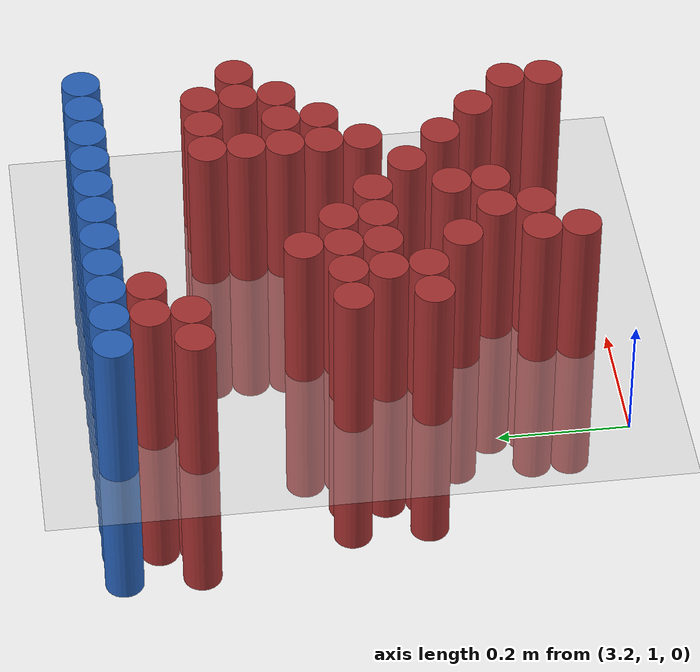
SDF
<sdf version="1.6">
 <world name="default">
  <model name="ground_plane">
   <static>1</static>
   <link name="link">
    <collision name="collision">
     <geometry><plane><normal>0 0 1</normal><size>100 100</size></plane></geometry>
     <surface><friction><ode><mu>100</mu><mu2>50</mu2></ode></friction></surface>
    </collision>
    <visual name="visual">
     <cast_shadows>0</cast_shadows>
     <geometry><plane><normal>0 0 1</normal><size>100 100</size></plane></geometry>
     <material>
      <script><uri>file://media/materials/scripts/gazebo.material</uri><name>Gazebo/Grey</name></script>
     </material>
    </visual>
   </link>
  </model>
  <model name="unit_cylinder_114">
   <static>1</static>
   <pose>3.210000 1.770000 0.000000 0.000000 0.000000 0.000000</pose>
   <link name="link">
    <inertial>
     <mass>1</mass>
     <inertia><ixx>0.145833</ixx><ixy>0</ixy><ixz>0</ixz><iyy>0.145833</iyy><iyz>0</iyz><izz>0.125</izz></inertia>
    </inertial>
    <collision name="collision">
     <geometry><cylinder><radius>0.030000</radius><length>0.5</length></cylinder></geometry>
    </collision>
    <visual name="visual">
     <geometry><cylinder><radius>0.030000</radius><length>0.5</length></cylinder></geometry>
     <material>
      <ambient>0.152000 0.379000 0.720000 1</ambient>
      <diffuse>0.152000 0.379000 0.720000 1</diffuse>
     </material>
     <material>
      <script><name>Gazebo/Grey</name><uri>file://media/materials/scripts/gazebo.material</uri></script>
     </material>
    </visual>
   </link>
  </model>
  <model name="unit_cylinder_115">
   <static>1</static>
   <pose>3.270000 1.770000 0.000000 0.000000 0.000000 0.000000</pose>
   <link name="link">
    <inertial>
     <mass>1</mass>
     <inertia><ixx>0.145833</ixx><ixy>0</ixy><ixz>0</ixz><iyy>0.145833</iyy><iyz>0</iyz><izz>0.125</izz></inertia>
    </inertial>
    <collision name="collision">
     <geometry><cylinder><radius>0.030000</radius><length>0.5</length></cylinder></geometry>
    </collision>
    <visual name="visual">
     <geometry><cylinder><radius>0.030000</radius><length>0.5</length></cylinder></geometry>
     <material>
      <ambient>0.152000 0.379000 0.720000 1</ambient>
      <diffuse>0.152000 0.379000 0.720000 1</diffuse>
     </material>
     <material>
      <script><name>Gazebo/Grey</name><uri>file://media/materials/scripts/gazebo.material</uri></script>
     </material>
    </visual>
   </link>
  </model>
  <model name="unit_cylinder_116">
   <static>1</static>
   <pose>3.330000 1.770000 0.000000 0.000000 0.000000 0.000000</pose>
   <link name="link">
    <inertial>
     <mass>1</mass>
     <inertia><ixx>0.145833</ixx><ixy>0</ixy><ixz>0</ixz><iyy>0.145833</iyy><iyz>0</iyz><izz>0.125</izz></inertia>
    </inertial>
    <collision name="collision">
     <geometry><cylinder><radius>0.030000</radius><length>0.5</length></cylinder></geometry>
    </collision>
    <visual name="visual">
     <geometry><cylinder><radius>0.030000</radius><length>0.5</length></cylinder></geometry>
     <material>
      <ambient>0.152000 0.379000 0.720000 1</ambient>
      <diffuse>0.152000 0.379000 0.720000 1</diffuse>
     </material>
     <material>
      <script><name>Gazebo/Grey</name><uri>file://media/materials/scripts/gazebo.material</uri></script>
     </material>
    </visual>
   </link>
  </model>
  <model name="unit_cylinder_117">
   <static>1</static>
   <pose>3.390000 1.770000 0.000000 0.000000 0.000000 0.000000</pose>
   <link name="link">
    <inertial>
     <mass>1</mass>
     <inertia><ixx>0.145833</ixx><ixy>0</ixy><ixz>0</ixz><iyy>0.145833</iyy><iyz>0</iyz><izz>0.125</izz></inertia>
    </inertial>
    <collision name="collision">
     <geometry><cylinder><radius>0.030000</radius><length>0.5</length></cylinder></geometry>
    </collision>
    <visual name="visual">
     <geometry><cylinder><radius>0.030000</radius><length>0.5</length></cylinder></geometry>
     <material>
      <ambient>0.152000 0.379000 0.720000 1</ambient>
      <diffuse>0.152000 0.379000 0.720000 1</diffuse>
     </material>
     <material>
      <script><name>Gazebo/Grey</name><uri>file://media/materials/scripts/gazebo.material</uri></script>
     </material>
    </visual>
   </link>
  </model>
  <model name="unit_cylinder_118">
   <static>1</static>
   <pose>3.450000 1.770000 0.000000 0.000000 0.000000 0.000000</pose>
   <link name="link">
    <inertial>
     <mass>1</mass>
     <inertia><ixx>0.145833</ixx><ixy>0</ixy><ixz>0</ixz><iyy>0.145833</iyy><iyz>0</iyz><izz>0.125</izz></inertia>
    </inertial>
    <collision name="collision">
     <geometry><cylinder><radius>0.030000</radius><length>0.5</length></cylinder></geometry>
    </collision>
    <visual name="visual">
     <geometry><cylinder><radius>0.030000</radius><length>0.5</length></cylinder></geometry>
     <material>
      <ambient>0.152000 0.379000 0.720000 1</ambient>
      <diffuse>0.152000 0.379000 0.720000 1</diffuse>
     </material>
     <material>
      <script><name>Gazebo/Grey</name><uri>file://media/materials/scripts/gazebo.material</uri></script>
     </material>
    </visual>
   </link>
  </model>
  <model name="unit_cylinder_119">
   <static>1</static>
   <pose>3.510000 1.770000 0.000000 0.000000 0.000000 0.000000</pose>
   <link name="link">
    <inertial>
     <mass>1</mass>
     <inertia><ixx>0.145833</ixx><ixy>0</ixy><ixz>0</ixz><iyy>0.145833</iyy><iyz>0</iyz><izz>0.125</izz></inertia>
    </inertial>
    <collision name="collision">
     <geometry><cylinder><radius>0.030000</radius><length>0.5</length></cylinder></geometry>
    </collision>
    <visual name="visual">
     <geometry><cylinder><radius>0.030000</radius><length>0.5</length></cylinder></geometry>
     <material>
      <ambient>0.152000 0.379000 0.720000 1</ambient>
      <diffuse>0.152000 0.379000 0.720000 1</diffuse>
     </material>
     <material>
      <script><name>Gazebo/Grey</name><uri>file://media/materials/scripts/gazebo.material</uri></script>
     </material>
    </visual>
   </link>
  </model>
  <model name="unit_cylinder_120">
   <static>1</static>
   <pose>3.570000 1.770000 0.000000 0.000000 0.000000 0.000000</pose>
   <link name="link">
    <inertial>
     <mass>1</mass>
     <inertia><ixx>0.145833</ixx><ixy>0</ixy><ixz>0</ixz><iyy>0.145833</iyy><iyz>0</iyz><izz>0.125</izz></inertia>
    </inertial>
    <collision name="collision">
     <geometry><cylinder><radius>0.030000</radius><length>0.5</length></cylinder></geometry>
    </collision>
    <visual name="visual">
     <geometry><cylinder><radius>0.030000</radius><length>0.5</length></cylinder></geometry>
     <material>
      <ambient>0.152000 0.379000 0.720000 1</ambient>
      <diffuse>0.152000 0.379000 0.720000 1</diffuse>
     </material>
     <material>
      <script><name>Gazebo/Grey</name><uri>file://media/materials/scripts/gazebo.material</uri></script>
     </material>
    </visual>
   </link>
  </model>
  <model name="unit_cylinder_121">
   <static>1</static>
   <pose>3.630000 1.770000 0.000000 0.000000 0.000000 0.000000</pose>
   <link name="link">
    <inertial>
     <mass>1</mass>
     <inertia><ixx>0.145833</ixx><ixy>0</ixy><ixz>0</ixz><iyy>0.145833</iyy><iyz>0</iyz><izz>0.125</izz></inertia>
    </inertial>
    <collision name="collision">
     <geometry><cylinder><radius>0.030000</radius><length>0.5</length></cylinder></geometry>
    </collision>
    <visual name="visual">
     <geometry><cylinder><radius>0.030000</radius><length>0.5</length></cylinder></geometry>
     <material>
      <ambient>0.152000 0.379000 0.720000 1</ambient>
      <diffuse>0.152000 0.379000 0.720000 1</diffuse>
     </material>
     <material>
      <script><name>Gazebo/Grey</name><uri>file://media/materials/scripts/gazebo.material</uri></script>
     </material>
    </visual>
   </link>
  </model>
  <model name="unit_cylinder_122">
   <static>1</static>
   <pose>3.690000 1.770000 0.000000 0.000000 0.000000 0.000000</pose>
   <link name="link">
    <inertial>
     <mass>1</mass>
     <inertia><ixx>0.145833</ixx><ixy>0</ixy><ixz>0</ixz><iyy>0.145833</iyy><iyz>0</iyz><izz>0.125</izz></inertia>
    </inertial>
    <collision name="collision">
     <geometry><cylinder><radius>0.030000</radius><length>0.5</length></cylinder></geometry>
    </collision>
    <visual name="visual">
     <geometry><cylinder><radius>0.030000</radius><length>0.5</length></cylinder></geometry>
     <material>
      <ambient>0.152000 0.379000 0.720000 1</ambient>
      <diffuse>0.152000 0.379000 0.720000 1</diffuse>
     </material>
     <material>
      <script><name>Gazebo/Grey</name><uri>file://media/materials/scripts/gazebo.material</uri></script>
     </material>
    </visual>
   </link>
  </model>
  <model name="unit_cylinder_123">
   <static>1</static>
   <pose>3.750000 1.770000 0.000000 0.000000 0.000000 0.000000</pose>
   <link name="link">
    <inertial>
     <mass>1</mass>
     <inertia><ixx>0.145833</ixx><ixy>0</ixy><ixz>0</ixz><iyy>0.145833</iyy><iyz>0</iyz><izz>0.125</izz></inertia>
    </inertial>
    <collision name="collision">
     <geometry><cylinder><radius>0.030000</radius><length>0.5</length></cylinder></geometry>
    </collision>
    <visual name="visual">
     <geometry><cylinder><radius>0.030000</radius><length>0.5</length></cylinder></geometry>
     <material>
      <ambient>0.152000 0.379000 0.720000 1</ambient>
      <diffuse>0.152000 0.379000 0.720000 1</diffuse>
     </material>
     <material>
      <script><name>Gazebo/Grey</name><uri>file://media/materials/scripts/gazebo.material</uri></script>
     </material>
    </visual>
   </link>
  </model>
  <model name="unit_cylinder_124">
   <static>1</static>
   <pose>3.810000 1.770000 0.000000 0.000000 0.000000 0.000000</pose>
   <link name="link">
    <inertial>
     <mass>1</mass>
     <inertia><ixx>0.145833</ixx><ixy>0</ixy><ixz>0</ixz><iyy>0.145833</iyy><iyz>0</iyz><izz>0.125</izz></inertia>
    </inertial>
    <collision name="collision">
     <geometry><cylinder><radius>0.030000</radius><length>0.5</length></cylinder></geometry>
    </collision>
    <visual name="visual">
     <geometry><cylinder><radius>0.030000</radius><length>0.5</length></cylinder></geometry>
     <material>
      <ambient>0.152000 0.379000 0.720000 1</ambient>
      <diffuse>0.152000 0.379000 0.720000 1</diffuse>
     </material>
     <material>
      <script><name>Gazebo/Grey</name><uri>file://media/materials/scripts/gazebo.material</uri></script>
     </material>
    </visual>
   </link>
  </model>
  <model name="unit_cylinder_135">
   <static>1</static>
   <pose>3.270000 1.710000 0.000000 0.000000 0.000000 0.000000</pose>
   <link name="link">
    <inertial>
     <mass>1</mass>
     <inertia><ixx>0.145833</ixx><ixy>0</ixy><ixz>0</ixz><iyy>0.145833</iyy><iyz>0</iyz><izz>0.125</izz></inertia>
    </inertial>
    <collision name="collision">
     <geometry><cylinder><radius>0.030000</radius><length>0.5</length></cylinder></geometry>
    </collision>
    <visual name="visual">
     <geometry><cylinder><radius>0.030000</radius><length>0.5</length></cylinder></geometry>
     <material>
      <ambient>0.648000 0.192000 0.192000 1</ambient>
      <diffuse>0.648000 0.192000 0.192000 1</diffuse>
     </material>
     <material>
      <script><name>Gazebo/Grey</name><uri>file://media/materials/scripts/gazebo.material</uri></script>
     </material>
    </visual>
   </link>
  </model>
  <model name="unit_cylinder_136">
   <static>1</static>
   <pose>3.330000 1.710000 0.000000 0.000000 0.000000 0.000000</pose>
   <link name="link">
    <inertial>
     <mass>1</mass>
     <inertia><ixx>0.145833</ixx><ixy>0</ixy><ixz>0</ixz><iyy>0.145833</iyy><iyz>0</iyz><izz>0.125</izz></inertia>
    </inertial>
    <collision name="collision">
     <geometry><cylinder><radius>0.030000</radius><length>0.5</length></cylinder></geometry>
    </collision>
    <visual name="visual">
     <geometry><cylinder><radius>0.030000</radius><length>0.5</length></cylinder></geometry>
     <material>
      <ambient>0.648000 0.192000 0.192000 1</ambient>
      <diffuse>0.648000 0.192000 0.192000 1</diffuse>
     </material>
     <material>
      <script><name>Gazebo/Grey</name><uri>file://media/materials/scripts/gazebo.material</uri></script>
     </material>
    </visual>
   </link>
  </model>
  <model name="unit_cylinder_142">
   <static>1</static>
   <pose>3.210000 1.650000 0.000000 0.000000 0.000000 0.000000</pose>
   <link name="link">
    <inertial>
     <mass>1</mass>
     <inertia><ixx>0.145833</ixx><ixy>0</ixy><ixz>0</ixz><iyy>0.145833</iyy><iyz>0</iyz><izz>0.125</izz></inertia>
    </inertial>
    <collision name="collision">
     <geometry><cylinder><radius>0.030000</radius><length>0.5</length></cylinder></geometry>
    </collision>
    <visual name="visual">
     <geometry><cylinder><radius>0.030000</radius><length>0.5</length></cylinder></geometry>
     <material>
      <ambient>0.648000 0.192000 0.192000 1</ambient>
      <diffuse>0.648000 0.192000 0.192000 1</diffuse>
     </material>
     <material>
      <script><name>Gazebo/Grey</name><uri>file://media/materials/scripts/gazebo.material</uri></script>
     </material>
    </visual>
   </link>
  </model>
  <model name="unit_cylinder_143">
   <static>1</static>
   <pose>3.270000 1.650000 0.000000 0.000000 0.000000 0.000000</pose>
   <link name="link">
    <inertial>
     <mass>1</mass>
     <inertia><ixx>0.145833</ixx><ixy>0</ixy><ixz>0</ixz><iyy>0.145833</iyy><iyz>0</iyz><izz>0.125</izz></inertia>
    </inertial>
    <collision name="collision">
     <geometry><cylinder><radius>0.030000</radius><length>0.5</length></cylinder></geometry>
    </collision>
    <visual name="visual">
     <geometry><cylinder><radius>0.030000</radius><length>0.5</length></cylinder></geometry>
     <material>
      <ambient>0.648000 0.192000 0.192000 1</ambient>
      <diffuse>0.648000 0.192000 0.192000 1</diffuse>
     </material>
     <material>
      <script><name>Gazebo/Grey</name><uri>file://media/materials/scripts/gazebo.material</uri></script>
     </material>
    </visual>
   </link>
  </model>
  <model name="unit_cylinder_150">
   <static>1</static>
   <pose>3.630000 1.590000 0.000000 0.000000 0.000000 0.000000</pose>
   <link name="link">
    <inertial>
     <mass>1</mass>
     <inertia><ixx>0.145833</ixx><ixy>0</ixy><ixz>0</ixz><iyy>0.145833</iyy><iyz>0</iyz><izz>0.125</izz></inertia>
    </inertial>
    <collision name="collision">
     <geometry><cylinder><radius>0.030000</radius><length>0.5</length></cylinder></geometry>
    </collision>
    <visual name="visual">
     <geometry><cylinder><radius>0.030000</radius><length>0.5</length></cylinder></geometry>
     <material>
      <ambient>0.648000 0.192000 0.192000 1</ambient>
      <diffuse>0.648000 0.192000 0.192000 1</diffuse>
     </material>
     <material>
      <script><name>Gazebo/Grey</name><uri>file://media/materials/scripts/gazebo.material</uri></script>
     </material>
    </visual>
   </link>
  </model>
  <model name="unit_cylinder_151">
   <static>1</static>
   <pose>3.690000 1.590000 0.000000 0.000000 0.000000 0.000000</pose>
   <link name="link">
    <inertial>
     <mass>1</mass>
     <inertia><ixx>0.145833</ixx><ixy>0</ixy><ixz>0</ixz><iyy>0.145833</iyy><iyz>0</iyz><izz>0.125</izz></inertia>
    </inertial>
    <collision name="collision">
     <geometry><cylinder><radius>0.030000</radius><length>0.5</length></cylinder></geometry>
    </collision>
    <visual name="visual">
     <geometry><cylinder><radius>0.030000</radius><length>0.5</length></cylinder></geometry>
     <material>
      <ambient>0.648000 0.192000 0.192000 1</ambient>
      <diffuse>0.648000 0.192000 0.192000 1</diffuse>
     </material>
     <material>
      <script><name>Gazebo/Grey</name><uri>file://media/materials/scripts/gazebo.material</uri></script>
     </material>
    </visual>
   </link>
  </model>
  <model name="unit_cylinder_152">
   <static>1</static>
   <pose>3.750000 1.590000 0.000000 0.000000 0.000000 0.000000</pose>
   <link name="link">
    <inertial>
     <mass>1</mass>
     <inertia><ixx>0.145833</ixx><ixy>0</ixy><ixz>0</ixz><iyy>0.145833</iyy><iyz>0</iyz><izz>0.125</izz></inertia>
    </inertial>
    <collision name="collision">
     <geometry><cylinder><radius>0.030000</radius><length>0.5</length></cylinder></geometry>
    </collision>
    <visual name="visual">
     <geometry><cylinder><radius>0.030000</radius><length>0.5</length></cylinder></geometry>
     <material>
      <ambient>0.648000 0.192000 0.192000 1</ambient>
      <diffuse>0.648000 0.192000 0.192000 1</diffuse>
     </material>
     <material>
      <script><name>Gazebo/Grey</name><uri>file://media/materials/scripts/gazebo.material</uri></script>
     </material>
    </visual>
   </link>
  </model>
  <model name="unit_cylinder_157">
   <static>1</static>
   <pose>3.630000 1.530000 0.000000 0.000000 0.000000 0.000000</pose>
   <link name="link">
    <inertial>
     <mass>1</mass>
     <inertia><ixx>0.145833</ixx><ixy>0</ixy><ixz>0</ixz><iyy>0.145833</iyy><iyz>0</iyz><izz>0.125</izz></inertia>
    </inertial>
    <collision name="collision">
     <geometry><cylinder><radius>0.030000</radius><length>0.5</length></cylinder></geometry>
    </collision>
    <visual name="visual">
     <geometry><cylinder><radius>0.030000</radius><length>0.5</length></cylinder></geometry>
     <material>
      <ambient>0.648000 0.192000 0.192000 1</ambient>
      <diffuse>0.648000 0.192000 0.192000 1</diffuse>
     </material>
     <material>
      <script><name>Gazebo/Grey</name><uri>file://media/materials/scripts/gazebo.material</uri></script>
     </material>
    </visual>
   </link>
  </model>
  <model name="unit_cylinder_158">
   <static>1</static>
   <pose>3.750000 1.530000 0.000000 0.000000 0.000000 0.000000</pose>
   <link name="link">
    <inertial>
     <mass>1</mass>
     <inertia><ixx>0.145833</ixx><ixy>0</ixy><ixz>0</ixz><iyy>0.145833</iyy><iyz>0</iyz><izz>0.125</izz></inertia>
    </inertial>
    <collision name="collision">
     <geometry><cylinder><radius>0.030000</radius><length>0.5</length></cylinder></geometry>
    </collision>
    <visual name="visual">
     <geometry><cylinder><radius>0.030000</radius><length>0.5</length></cylinder></geometry>
     <material>
      <ambient>0.648000 0.192000 0.192000 1</ambient>
      <diffuse>0.648000 0.192000 0.192000 1</diffuse>
     </material>
     <material>
      <script><name>Gazebo/Grey</name><uri>file://media/materials/scripts/gazebo.material</uri></script>
     </material>
    </visual>
   </link>
  </model>
  <model name="unit_cylinder_159">
   <static>1</static>
   <pose>3.810000 1.530000 0.000000 0.000000 0.000000 0.000000</pose>
   <link name="link">
    <inertial>
     <mass>1</mass>
     <inertia><ixx>0.145833</ixx><ixy>0</ixy><ixz>0</ixz><iyy>0.145833</iyy><iyz>0</iyz><izz>0.125</izz></inertia>
    </inertial>
    <collision name="collision">
     <geometry><cylinder><radius>0.030000</radius><length>0.5</length></cylinder></geometry>
    </collision>
    <visual name="visual">
     <geometry><cylinder><radius>0.030000</radius><length>0.5</length></cylinder></geometry>
     <material>
      <ambient>0.648000 0.192000 0.192000 1</ambient>
      <diffuse>0.648000 0.192000 0.192000 1</diffuse>
     </material>
     <material>
      <script><name>Gazebo/Grey</name><uri>file://media/materials/scripts/gazebo.material</uri></script>
     </material>
    </visual>
   </link>
  </model>
  <model name="unit_cylinder_165">
   <static>1</static>
   <pose>3.390000 1.470000 0.000000 0.000000 0.000000 0.000000</pose>
   <link name="link">
    <inertial>
     <mass>1</mass>
     <inertia><ixx>0.145833</ixx><ixy>0</ixy><ixz>0</ixz><iyy>0.145833</iyy><iyz>0</iyz><izz>0.125</izz></inertia>
    </inertial>
    <collision name="collision">
     <geometry><cylinder><radius>0.030000</radius><length>0.5</length></cylinder></geometry>
    </collision>
    <visual name="visual">
     <geometry><cylinder><radius>0.030000</radius><length>0.5</length></cylinder></geometry>
     <material>
      <ambient>0.648000 0.192000 0.192000 1</ambient>
      <diffuse>0.648000 0.192000 0.192000 1</diffuse>
     </material>
     <material>
      <script><name>Gazebo/Grey</name><uri>file://media/materials/scripts/gazebo.material</uri></script>
     </material>
    </visual>
   </link>
  </model>
  <model name="unit_cylinder_166">
   <static>1</static>
   <pose>3.630000 1.470000 0.000000 0.000000 0.000000 0.000000</pose>
   <link name="link">
    <inertial>
     <mass>1</mass>
     <inertia><ixx>0.145833</ixx><ixy>0</ixy><ixz>0</ixz><iyy>0.145833</iyy><iyz>0</iyz><izz>0.125</izz></inertia>
    </inertial>
    <collision name="collision">
     <geometry><cylinder><radius>0.030000</radius><length>0.5</length></cylinder></geometry>
    </collision>
    <visual name="visual">
     <geometry><cylinder><radius>0.030000</radius><length>0.5</length></cylinder></geometry>
     <material>
      <ambient>0.648000 0.192000 0.192000 1</ambient>
      <diffuse>0.648000 0.192000 0.192000 1</diffuse>
     </material>
     <material>
      <script><name>Gazebo/Grey</name><uri>file://media/materials/scripts/gazebo.material</uri></script>
     </material>
    </visual>
   </link>
  </model>
  <model name="unit_cylinder_167">
   <static>1</static>
   <pose>3.690000 1.470000 0.000000 0.000000 0.000000 0.000000</pose>
   <link name="link">
    <inertial>
     <mass>1</mass>
     <inertia><ixx>0.145833</ixx><ixy>0</ixy><ixz>0</ixz><iyy>0.145833</iyy><iyz>0</iyz><izz>0.125</izz></inertia>
    </inertial>
    <collision name="collision">
     <geometry><cylinder><radius>0.030000</radius><length>0.5</length></cylinder></geometry>
    </collision>
    <visual name="visual">
     <geometry><cylinder><radius>0.030000</radius><length>0.5</length></cylinder></geometry>
     <material>
      <ambient>0.648000 0.192000 0.192000 1</ambient>
      <diffuse>0.648000 0.192000 0.192000 1</diffuse>
     </material>
     <material>
      <script><name>Gazebo/Grey</name><uri>file://media/materials/scripts/gazebo.material</uri></script>
     </material>
    </visual>
   </link>
  </model>
  <model name="unit_cylinder_168">
   <static>1</static>
   <pose>3.750000 1.470000 0.000000 0.000000 0.000000 0.000000</pose>
   <link name="link">
    <inertial>
     <mass>1</mass>
     <inertia><ixx>0.145833</ixx><ixy>0</ixy><ixz>0</ixz><iyy>0.145833</iyy><iyz>0</iyz><izz>0.125</izz></inertia>
    </inertial>
    <collision name="collision">
     <geometry><cylinder><radius>0.030000</radius><length>0.5</length></cylinder></geometry>
    </collision>
    <visual name="visual">
     <geometry><cylinder><radius>0.030000</radius><length>0.5</length></cylinder></geometry>
     <material>
      <ambient>0.648000 0.192000 0.192000 1</ambient>
      <diffuse>0.648000 0.192000 0.192000 1</diffuse>
     </material>
     <material>
      <script><name>Gazebo/Grey</name><uri>file://media/materials/scripts/gazebo.material</uri></script>
     </material>
    </visual>
   </link>
  </model>
  <model name="unit_cylinder_177">
   <static>1</static>
   <pose>3.270000 1.410000 0.000000 0.000000 0.000000 0.000000</pose>
   <link name="link">
    <inertial>
     <mass>1</mass>
     <inertia><ixx>0.145833</ixx><ixy>0</ixy><ixz>0</ixz><iyy>0.145833</iyy><iyz>0</iyz><izz>0.125</izz></inertia>
    </inertial>
    <collision name="collision">
     <geometry><cylinder><radius>0.030000</radius><length>0.5</length></cylinder></geometry>
    </collision>
    <visual name="visual">
     <geometry><cylinder><radius>0.030000</radius><length>0.5</length></cylinder></geometry>
     <material>
      <ambient>0.648000 0.192000 0.192000 1</ambient>
      <diffuse>0.648000 0.192000 0.192000 1</diffuse>
     </material>
     <material>
      <script><name>Gazebo/Grey</name><uri>file://media/materials/scripts/gazebo.material</uri></script>
     </material>
    </visual>
   </link>
  </model>
  <model name="unit_cylinder_178">
   <static>1</static>
   <pose>3.330000 1.410000 0.000000 0.000000 0.000000 0.000000</pose>
   <link name="link">
    <inertial>
     <mass>1</mass>
     <inertia><ixx>0.145833</ixx><ixy>0</ixy><ixz>0</ixz><iyy>0.145833</iyy><iyz>0</iyz><izz>0.125</izz></inertia>
    </inertial>
    <collision name="collision">
     <geometry><cylinder><radius>0.030000</radius><length>0.5</length></cylinder></geometry>
    </collision>
    <visual name="visual">
     <geometry><cylinder><radius>0.030000</radius><length>0.5</length></cylinder></geometry>
     <material>
      <ambient>0.648000 0.192000 0.192000 1</ambient>
      <diffuse>0.648000 0.192000 0.192000 1</diffuse>
     </material>
     <material>
      <script><name>Gazebo/Grey</name><uri>file://media/materials/scripts/gazebo.material</uri></script>
     </material>
    </visual>
   </link>
  </model>
  <model name="unit_cylinder_179">
   <static>1</static>
   <pose>3.390000 1.410000 0.000000 0.000000 0.000000 0.000000</pose>
   <link name="link">
    <inertial>
     <mass>1</mass>
     <inertia><ixx>0.145833</ixx><ixy>0</ixy><ixz>0</ixz><iyy>0.145833</iyy><iyz>0</iyz><izz>0.125</izz></inertia>
    </inertial>
    <collision name="collision">
     <geometry><cylinder><radius>0.030000</radius><length>0.5</length></cylinder></geometry>
    </collision>
    <visual name="visual">
     <geometry><cylinder><radius>0.030000</radius><length>0.5</length></cylinder></geometry>
     <material>
      <ambient>0.648000 0.192000 0.192000 1</ambient>
      <diffuse>0.648000 0.192000 0.192000 1</diffuse>
     </material>
     <material>
      <script><name>Gazebo/Grey</name><uri>file://media/materials/scripts/gazebo.material</uri></script>
     </material>
    </visual>
   </link>
  </model>
  <model name="unit_cylinder_180">
   <static>1</static>
   <pose>3.450000 1.410000 0.000000 0.000000 0.000000 0.000000</pose>
   <link name="link">
    <inertial>
     <mass>1</mass>
     <inertia><ixx>0.145833</ixx><ixy>0</ixy><ixz>0</ixz><iyy>0.145833</iyy><iyz>0</iyz><izz>0.125</izz></inertia>
    </inertial>
    <collision name="collision">
     <geometry><cylinder><radius>0.030000</radius><length>0.5</length></cylinder></geometry>
    </collision>
    <visual name="visual">
     <geometry><cylinder><radius>0.030000</radius><length>0.5</length></cylinder></geometry>
     <material>
      <ambient>0.648000 0.192000 0.192000 1</ambient>
      <diffuse>0.648000 0.192000 0.192000 1</diffuse>
     </material>
     <material>
      <script><name>Gazebo/Grey</name><uri>file://media/materials/scripts/gazebo.material</uri></script>
     </material>
    </visual>
   </link>
  </model>
  <model name="unit_cylinder_181">
   <static>1</static>
   <pose>3.630000 1.410000 0.000000 0.000000 0.000000 0.000000</pose>
   <link name="link">
    <inertial>
     <mass>1</mass>
     <inertia><ixx>0.145833</ixx><ixy>0</ixy><ixz>0</ixz><iyy>0.145833</iyy><iyz>0</iyz><izz>0.125</izz></inertia>
    </inertial>
    <collision name="collision">
     <geometry><cylinder><radius>0.030000</radius><length>0.5</length></cylinder></geometry>
    </collision>
    <visual name="visual">
     <geometry><cylinder><radius>0.030000</radius><length>0.5</length></cylinder></geometry>
     <material>
      <ambient>0.648000 0.192000 0.192000 1</ambient>
      <diffuse>0.648000 0.192000 0.192000 1</diffuse>
     </material>
     <material>
      <script><name>Gazebo/Grey</name><uri>file://media/materials/scripts/gazebo.material</uri></script>
     </material>
    </visual>
   </link>
  </model>
  <model name="unit_cylinder_182">
   <static>1</static>
   <pose>3.690000 1.410000 0.000000 0.000000 0.000000 0.000000</pose>
   <link name="link">
    <inertial>
     <mass>1</mass>
     <inertia><ixx>0.145833</ixx><ixy>0</ixy><ixz>0</ixz><iyy>0.145833</iyy><iyz>0</iyz><izz>0.125</izz></inertia>
    </inertial>
    <collision name="collision">
     <geometry><cylinder><radius>0.030000</radius><length>0.5</length></cylinder></geometry>
    </collision>
    <visual name="visual">
     <geometry><cylinder><radius>0.030000</radius><length>0.5</length></cylinder></geometry>
     <material>
      <ambient>0.648000 0.192000 0.192000 1</ambient>
      <diffuse>0.648000 0.192000 0.192000 1</diffuse>
     </material>
     <material>
      <script><name>Gazebo/Grey</name><uri>file://media/materials/scripts/gazebo.material</uri></script>
     </material>
    </visual>
   </link>
  </model>
  <model name="unit_cylinder_188">
   <static>1</static>
   <pose>3.330000 1.350000 0.000000 0.000000 0.000000 0.000000</pose>
   <link name="link">
    <inertial>
     <mass>1</mass>
     <inertia><ixx>0.145833</ixx><ixy>0</ixy><ixz>0</ixz><iyy>0.145833</iyy><iyz>0</iyz><izz>0.125</izz></inertia>
    </inertial>
    <collision name="collision">
     <geometry><cylinder><radius>0.030000</radius><length>0.5</length></cylinder></geometry>
    </collision>
    <visual name="visual">
     <geometry><cylinder><radius>0.030000</radius><length>0.5</length></cylinder></geometry>
     <material>
      <ambient>0.648000 0.192000 0.192000 1</ambient>
      <diffuse>0.648000 0.192000 0.192000 1</diffuse>
     </material>
     <material>
      <script><name>Gazebo/Grey</name><uri>file://media/materials/scripts/gazebo.material</uri></script>
     </material>
    </visual>
   </link>
  </model>
  <model name="unit_cylinder_189">
   <static>1</static>
   <pose>3.390000 1.350000 0.000000 0.000000 0.000000 0.000000</pose>
   <link name="link">
    <inertial>
     <mass>1</mass>
     <inertia><ixx>0.145833</ixx><ixy>0</ixy><ixz>0</ixz><iyy>0.145833</iyy><iyz>0</iyz><izz>0.125</izz></inertia>
    </inertial>
    <collision name="collision">
     <geometry><cylinder><radius>0.030000</radius><length>0.5</length></cylinder></geometry>
    </collision>
    <visual name="visual">
     <geometry><cylinder><radius>0.030000</radius><length>0.5</length></cylinder></geometry>
     <material>
      <ambient>0.648000 0.192000 0.192000 1</ambient>
      <diffuse>0.648000 0.192000 0.192000 1</diffuse>
     </material>
     <material>
      <script><name>Gazebo/Grey</name><uri>file://media/materials/scripts/gazebo.material</uri></script>
     </material>
    </visual>
   </link>
  </model>
  <model name="unit_cylinder_190">
   <static>1</static>
   <pose>3.450000 1.350000 0.000000 0.000000 0.000000 0.000000</pose>
   <link name="link">
    <inertial>
     <mass>1</mass>
     <inertia><ixx>0.145833</ixx><ixy>0</ixy><ixz>0</ixz><iyy>0.145833</iyy><iyz>0</iyz><izz>0.125</izz></inertia>
    </inertial>
    <collision name="collision">
     <geometry><cylinder><radius>0.030000</radius><length>0.5</length></cylinder></geometry>
    </collision>
    <visual name="visual">
     <geometry><cylinder><radius>0.030000</radius><length>0.5</length></cylinder></geometry>
     <material>
      <ambient>0.648000 0.192000 0.192000 1</ambient>
      <diffuse>0.648000 0.192000 0.192000 1</diffuse>
     </material>
     <material>
      <script><name>Gazebo/Grey</name><uri>file://media/materials/scripts/gazebo.material</uri></script>
     </material>
    </visual>
   </link>
  </model>
  <model name="unit_cylinder_191">
   <static>1</static>
   <pose>3.510000 1.350000 0.000000 0.000000 0.000000 0.000000</pose>
   <link name="link">
    <inertial>
     <mass>1</mass>
     <inertia><ixx>0.145833</ixx><ixy>0</ixy><ixz>0</ixz><iyy>0.145833</iyy><iyz>0</iyz><izz>0.125</izz></inertia>
    </inertial>
    <collision name="collision">
     <geometry><cylinder><radius>0.030000</radius><length>0.5</length></cylinder></geometry>
    </collision>
    <visual name="visual">
     <geometry><cylinder><radius>0.030000</radius><length>0.5</length></cylinder></geometry>
     <material>
      <ambient>0.648000 0.192000 0.192000 1</ambient>
      <diffuse>0.648000 0.192000 0.192000 1</diffuse>
     </material>
     <material>
      <script><name>Gazebo/Grey</name><uri>file://media/materials/scripts/gazebo.material</uri></script>
     </material>
    </visual>
   </link>
  </model>
  <model name="unit_cylinder_192">
   <static>1</static>
   <pose>3.630000 1.350000 0.000000 0.000000 0.000000 0.000000</pose>
   <link name="link">
    <inertial>
     <mass>1</mass>
     <inertia><ixx>0.145833</ixx><ixy>0</ixy><ixz>0</ixz><iyy>0.145833</iyy><iyz>0</iyz><izz>0.125</izz></inertia>
    </inertial>
    <collision name="collision">
     <geometry><cylinder><radius>0.030000</radius><length>0.5</length></cylinder></geometry>
    </collision>
    <visual name="visual">
     <geometry><cylinder><radius>0.030000</radius><length>0.5</length></cylinder></geometry>
     <material>
      <ambient>0.648000 0.192000 0.192000 1</ambient>
      <diffuse>0.648000 0.192000 0.192000 1</diffuse>
     </material>
     <material>
      <script><name>Gazebo/Grey</name><uri>file://media/materials/scripts/gazebo.material</uri></script>
     </material>
    </visual>
   </link>
  </model>
  <model name="unit_cylinder_196">
   <static>1</static>
   <pose>3.270000 1.290000 0.000000 0.000000 0.000000 0.000000</pose>
   <link name="link">
    <inertial>
     <mass>1</mass>
     <inertia><ixx>0.145833</ixx><ixy>0</ixy><ixz>0</ixz><iyy>0.145833</iyy><iyz>0</iyz><izz>0.125</izz></inertia>
    </inertial>
    <collision name="collision">
     <geometry><cylinder><radius>0.030000</radius><length>0.5</length></cylinder></geometry>
    </collision>
    <visual name="visual">
     <geometry><cylinder><radius>0.030000</radius><length>0.5</length></cylinder></geometry>
     <material>
      <ambient>0.648000 0.192000 0.192000 1</ambient>
      <diffuse>0.648000 0.192000 0.192000 1</diffuse>
     </material>
     <material>
      <script><name>Gazebo/Grey</name><uri>file://media/materials/scripts/gazebo.material</uri></script>
     </material>
    </visual>
   </link>
  </model>
  <model name="unit_cylinder_197">
   <static>1</static>
   <pose>3.330000 1.290000 0.000000 0.000000 0.000000 0.000000</pose>
   <link name="link">
    <inertial>
     <mass>1</mass>
     <inertia><ixx>0.145833</ixx><ixy>0</ixy><ixz>0</ixz><iyy>0.145833</iyy><iyz>0</iyz><izz>0.125</izz></inertia>
    </inertial>
    <collision name="collision">
     <geometry><cylinder><radius>0.030000</radius><length>0.5</length></cylinder></geometry>
    </collision>
    <visual name="visual">
     <geometry><cylinder><radius>0.030000</radius><length>0.5</length></cylinder></geometry>
     <material>
      <ambient>0.648000 0.192000 0.192000 1</ambient>
      <diffuse>0.648000 0.192000 0.192000 1</diffuse>
     </material>
     <material>
      <script><name>Gazebo/Grey</name><uri>file://media/materials/scripts/gazebo.material</uri></script>
     </material>
    </visual>
   </link>
  </model>
  <model name="unit_cylinder_198">
   <static>1</static>
   <pose>3.570000 1.290000 0.000000 0.000000 0.000000 0.000000</pose>
   <link name="link">
    <inertial>
     <mass>1</mass>
     <inertia><ixx>0.145833</ixx><ixy>0</ixy><ixz>0</ixz><iyy>0.145833</iyy><iyz>0</iyz><izz>0.125</izz></inertia>
    </inertial>
    <collision name="collision">
     <geometry><cylinder><radius>0.030000</radius><length>0.5</length></cylinder></geometry>
    </collision>
    <visual name="visual">
     <geometry><cylinder><radius>0.030000</radius><length>0.5</length></cylinder></geometry>
     <material>
      <ambient>0.648000 0.192000 0.192000 1</ambient>
      <diffuse>0.648000 0.192000 0.192000 1</diffuse>
     </material>
     <material>
      <script><name>Gazebo/Grey</name><uri>file://media/materials/scripts/gazebo.material</uri></script>
     </material>
    </visual>
   </link>
  </model>
  <model name="unit_cylinder_200">
   <static>1</static>
   <pose>3.390000 1.230000 0.000000 0.000000 0.000000 0.000000</pose>
   <link name="link">
    <inertial>
     <mass>1</mass>
     <inertia><ixx>0.145833</ixx><ixy>0</ixy><ixz>0</ixz><iyy>0.145833</iyy><iyz>0</iyz><izz>0.125</izz></inertia>
    </inertial>
    <collision name="collision">
     <geometry><cylinder><radius>0.030000</radius><length>0.5</length></cylinder></geometry>
    </collision>
    <visual name="visual">
     <geometry><cylinder><radius>0.030000</radius><length>0.5</length></cylinder></geometry>
     <material>
      <ambient>0.648000 0.192000 0.192000 1</ambient>
      <diffuse>0.648000 0.192000 0.192000 1</diffuse>
     </material>
     <material>
      <script><name>Gazebo/Grey</name><uri>file://media/materials/scripts/gazebo.material</uri></script>
     </material>
    </visual>
   </link>
  </model>
  <model name="unit_cylinder_201">
   <static>1</static>
   <pose>3.510000 1.230000 0.000000 0.000000 0.000000 0.000000</pose>
   <link name="link">
    <inertial>
     <mass>1</mass>
     <inertia><ixx>0.145833</ixx><ixy>0</ixy><ixz>0</ixz><iyy>0.145833</iyy><iyz>0</iyz><izz>0.125</izz></inertia>
    </inertial>
    <collision name="collision">
     <geometry><cylinder><radius>0.030000</radius><length>0.5</length></cylinder></geometry>
    </collision>
    <visual name="visual">
     <geometry><cylinder><radius>0.030000</radius><length>0.5</length></cylinder></geometry>
     <material>
      <ambient>0.648000 0.192000 0.192000 1</ambient>
      <diffuse>0.648000 0.192000 0.192000 1</diffuse>
     </material>
     <material>
      <script><name>Gazebo/Grey</name><uri>file://media/materials/scripts/gazebo.material</uri></script>
     </material>
    </visual>
   </link>
  </model>
  <model name="unit_cylinder_202">
   <static>1</static>
   <pose>3.630000 1.230000 0.000000 0.000000 0.000000 0.000000</pose>
   <link name="link">
    <inertial>
     <mass>1</mass>
     <inertia><ixx>0.145833</ixx><ixy>0</ixy><ixz>0</ixz><iyy>0.145833</iyy><iyz>0</iyz><izz>0.125</izz></inertia>
    </inertial>
    <collision name="collision">
     <geometry><cylinder><radius>0.030000</radius><length>0.5</length></cylinder></geometry>
    </collision>
    <visual name="visual">
     <geometry><cylinder><radius>0.030000</radius><length>0.5</length></cylinder></geometry>
     <material>
      <ambient>0.648000 0.192000 0.192000 1</ambient>
      <diffuse>0.648000 0.192000 0.192000 1</diffuse>
     </material>
     <material>
      <script><name>Gazebo/Grey</name><uri>file://media/materials/scripts/gazebo.material</uri></script>
     </material>
    </visual>
   </link>
  </model>
  <model name="unit_cylinder_207">
   <static>1</static>
   <pose>3.450000 1.170000 0.000000 0.000000 0.000000 0.000000</pose>
   <link name="link">
    <inertial>
     <mass>1</mass>
     <inertia><ixx>0.145833</ixx><ixy>0</ixy><ixz>0</ixz><iyy>0.145833</iyy><iyz>0</iyz><izz>0.125</izz></inertia>
    </inertial>
    <collision name="collision">
     <geometry><cylinder><radius>0.030000</radius><length>0.5</length></cylinder></geometry>
    </collision>
    <visual name="visual">
     <geometry><cylinder><radius>0.030000</radius><length>0.5</length></cylinder></geometry>
     <material>
      <ambient>0.648000 0.192000 0.192000 1</ambient>
      <diffuse>0.648000 0.192000 0.192000 1</diffuse>
     </material>
     <material>
      <script><name>Gazebo/Grey</name><uri>file://media/materials/scripts/gazebo.material</uri></script>
     </material>
    </visual>
   </link>
  </model>
  <model name="unit_cylinder_208">
   <static>1</static>
   <pose>3.510000 1.170000 0.000000 0.000000 0.000000 0.000000</pose>
   <link name="link">
    <inertial>
     <mass>1</mass>
     <inertia><ixx>0.145833</ixx><ixy>0</ixy><ixz>0</ixz><iyy>0.145833</iyy><iyz>0</iyz><izz>0.125</izz></inertia>
    </inertial>
    <collision name="collision">
     <geometry><cylinder><radius>0.030000</radius><length>0.5</length></cylinder></geometry>
    </collision>
    <visual name="visual">
     <geometry><cylinder><radius>0.030000</radius><length>0.5</length></cylinder></geometry>
     <material>
      <ambient>0.648000 0.192000 0.192000 1</ambient>
      <diffuse>0.648000 0.192000 0.192000 1</diffuse>
     </material>
     <material>
      <script><name>Gazebo/Grey</name><uri>file://media/materials/scripts/gazebo.material</uri></script>
     </material>
    </visual>
   </link>
  </model>
  <model name="unit_cylinder_209">
   <static>1</static>
   <pose>3.690000 1.170000 0.000000 0.000000 0.000000 0.000000</pose>
   <link name="link">
    <inertial>
     <mass>1</mass>
     <inertia><ixx>0.145833</ixx><ixy>0</ixy><ixz>0</ixz><iyy>0.145833</iyy><iyz>0</iyz><izz>0.125</izz></inertia>
    </inertial>
    <collision name="collision">
     <geometry><cylinder><radius>0.030000</radius><length>0.5</length></cylinder></geometry>
    </collision>
    <visual name="visual">
     <geometry><cylinder><radius>0.030000</radius><length>0.5</length></cylinder></geometry>
     <material>
      <ambient>0.648000 0.192000 0.192000 1</ambient>
      <diffuse>0.648000 0.192000 0.192000 1</diffuse>
     </material>
     <material>
      <script><name>Gazebo/Grey</name><uri>file://media/materials/scripts/gazebo.material</uri></script>
     </material>
    </visual>
   </link>
  </model>
  <model name="unit_cylinder_216">
   <static>1</static>
   <pose>3.390000 1.110000 0.000000 0.000000 0.000000 0.000000</pose>
   <link name="link">
    <inertial>
     <mass>1</mass>
     <inertia><ixx>0.145833</ixx><ixy>0</ixy><ixz>0</ixz><iyy>0.145833</iyy><iyz>0</iyz><izz>0.125</izz></inertia>
    </inertial>
    <collision name="collision">
     <geometry><cylinder><radius>0.030000</radius><length>0.5</length></cylinder></geometry>
    </collision>
    <visual name="visual">
     <geometry><cylinder><radius>0.030000</radius><length>0.5</length></cylinder></geometry>
     <material>
      <ambient>0.648000 0.192000 0.192000 1</ambient>
      <diffuse>0.648000 0.192000 0.192000 1</diffuse>
     </material>
     <material>
      <script><name>Gazebo/Grey</name><uri>file://media/materials/scripts/gazebo.material</uri></script>
     </material>
    </visual>
   </link>
  </model>
  <model name="unit_cylinder_217">
   <static>1</static>
   <pose>3.450000 1.110000 0.000000 0.000000 0.000000 0.000000</pose>
   <link name="link">
    <inertial>
     <mass>1</mass>
     <inertia><ixx>0.145833</ixx><ixy>0</ixy><ixz>0</ixz><iyy>0.145833</iyy><iyz>0</iyz><izz>0.125</izz></inertia>
    </inertial>
    <collision name="collision">
     <geometry><cylinder><radius>0.030000</radius><length>0.5</length></cylinder></geometry>
    </collision>
    <visual name="visual">
     <geometry><cylinder><radius>0.030000</radius><length>0.5</length></cylinder></geometry>
     <material>
      <ambient>0.648000 0.192000 0.192000 1</ambient>
      <diffuse>0.648000 0.192000 0.192000 1</diffuse>
     </material>
     <material>
      <script><name>Gazebo/Grey</name><uri>file://media/materials/scripts/gazebo.material</uri></script>
     </material>
    </visual>
   </link>
  </model>
  <model name="unit_cylinder_218">
   <static>1</static>
   <pose>3.750000 1.110000 0.000000 0.000000 0.000000 0.000000</pose>
   <link name="link">
    <inertial>
     <mass>1</mass>
     <inertia><ixx>0.145833</ixx><ixy>0</ixy><ixz>0</ixz><iyy>0.145833</iyy><iyz>0</iyz><izz>0.125</izz></inertia>
    </inertial>
    <collision name="collision">
     <geometry><cylinder><radius>0.030000</radius><length>0.5</length></cylinder></geometry>
    </collision>
    <visual name="visual">
     <geometry><cylinder><radius>0.030000</radius><length>0.5</length></cylinder></geometry>
     <material>
      <ambient>0.648000 0.192000 0.192000 1</ambient>
      <diffuse>0.648000 0.192000 0.192000 1</diffuse>
     </material>
     <material>
      <script><name>Gazebo/Grey</name><uri>file://media/materials/scripts/gazebo.material</uri></script>
     </material>
    </visual>
   </link>
  </model>
  <model name="unit_cylinder_224">
   <static>1</static>
   <pose>3.390000 1.050000 0.000000 0.000000 0.000000 0.000000</pose>
   <link name="link">
    <inertial>
     <mass>1</mass>
     <inertia><ixx>0.145833</ixx><ixy>0</ixy><ixz>0</ixz><iyy>0.145833</iyy><iyz>0</iyz><izz>0.125</izz></inertia>
    </inertial>
    <collision name="collision">
     <geometry><cylinder><radius>0.030000</radius><length>0.5</length></cylinder></geometry>
    </collision>
    <visual name="visual">
     <geometry><cylinder><radius>0.030000</radius><length>0.5</length></cylinder></geometry>
     <material>
      <ambient>0.648000 0.192000 0.192000 1</ambient>
      <diffuse>0.648000 0.192000 0.192000 1</diffuse>
     </material>
     <material>
      <script><name>Gazebo/Grey</name><uri>file://media/materials/scripts/gazebo.material</uri></script>
     </material>
    </visual>
   </link>
  </model>
  <model name="unit_cylinder_225">
   <static>1</static>
   <pose>3.750000 1.050000 0.000000 0.000000 0.000000 0.000000</pose>
   <link name="link">
    <inertial>
     <mass>1</mass>
     <inertia><ixx>0.145833</ixx><ixy>0</ixy><ixz>0</ixz><iyy>0.145833</iyy><iyz>0</iyz><izz>0.125</izz></inertia>
    </inertial>
    <collision name="collision">
     <geometry><cylinder><radius>0.030000</radius><length>0.5</length></cylinder></geometry>
    </collision>
    <visual name="visual">
     <geometry><cylinder><radius>0.030000</radius><length>0.5</length></cylinder></geometry>
     <material>
      <ambient>0.648000 0.192000 0.192000 1</ambient>
      <diffuse>0.648000 0.192000 0.192000 1</diffuse>
     </material>
     <material>
      <script><name>Gazebo/Grey</name><uri>file://media/materials/scripts/gazebo.material</uri></script>
     </material>
    </visual>
   </link>
  </model>
 </world>
</sdf>
